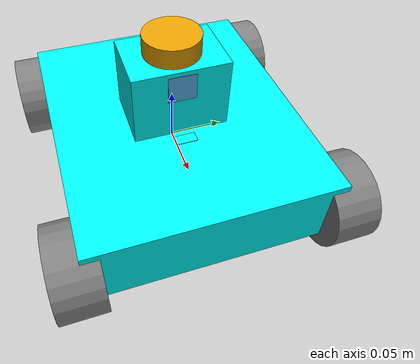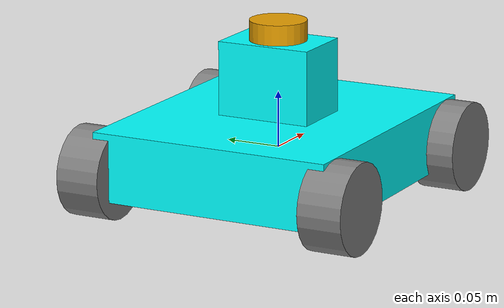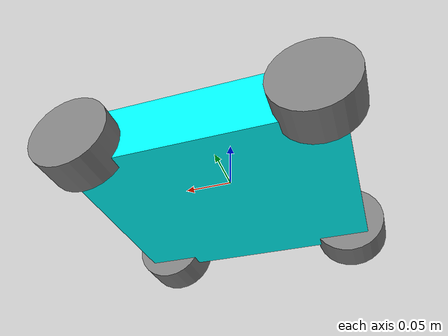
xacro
<?xml version="1.0" ?>
<!-- |    This document was autogenerated by xacro from land_description.urdf          | -->
<!-- |    EDITING THIS FILE BY HAND IS NOT RECOMMENDED                                 | -->
<robot name="land">
  <!-- position along x axis -->
  <!-- ROBOT BASE -->
  <link name="base_link">
    <visual>
      <geometry>
        <box size="0.262 0.221 0.061"/>
      </geometry>
      <material name="Cyan">
        <color rgba="0 1.0 1.0 1.0"/>
      </material>
    </visual>
    <collision>
      <geometry>
        <box size="0.262 0.221 0.061"/>
      </geometry>
    </collision>
  </link>
  <!-- ROBOT FOOTPRINT-->
  <link name="base_footprint">
    <inertial>
      <origin rpy="1.5707963267948966 0 1.5707963267948966" xyz="0 0 0"/>
      <mass value="2"/>
      <inertia ixx="0.012060833333333335" ixy="0.0" ixz="0.0" iyy="0.019580833333333332" iyz="0.0" izz="0.008760333333333334"/>
    </inertial>
  </link>
  <joint name="base_joint" type="fixed">
    <parent link="base_link"/>
    <child link="base_footprint"/>
    <origin rpy="0 0 0" xyz="0.0 0.0 -0.05"/>
  </joint>
  <!-- MAIN TOWER -->
  <link name="tower_link">
    <collision>
      <origin rpy="0 0 0" xyz="0 0 0"/>
      <geometry>
        <box size="0.06 0.086 0.066"/>
      </geometry>
    </collision>
    <inertial>
      <origin rpy="1.5707963267948966 0 1.5707963267948966" xyz="0 0 0"/>
      <mass value="0.5"/>
      <inertia ixx="0.00033150000000000003" ixy="0.0" ixz="0.0" iyy="0.0004581666666666666" iyz="0.0" izz="0.0004896666666666666"/>
    </inertial>
    <visual>
      <geometry>
        <box size="0.06 0.086 0.066"/>
      </geometry>
      <material name="Cyan">
        <color rgba="0 1.0 1.0 1.0"/>
      </material>
    </visual>
  </link>
  <joint name="tower_joint" type="fixed">
    <parent link="base_link"/>
    <child link="tower_link"/>
    <origin rpy="0 0 0" xyz="0.0 0.0 0.0635"/>
  </joint>
  <link name="back_left_link">
    <collision>
      <origin rpy="1.5707963267948966 0 0" xyz="0 0 0"/>
      <geometry>
        <cylinder length="0.04" radius="0.04"/>
      </geometry>
    </collision>
    <inertial>
      <origin rpy="1.5707963267948966 0 0" xyz="0 0 0"/>
      <mass value="0.5"/>
      <inertia ixx="0.0002666666666666666" ixy="0" ixz="0" iyy="0.0002666666666666666" iyz="0" izz="0.0004"/>
    </inertial>
    <visual>
      <origin rpy="1.5707963267948966 0 0" xyz="0 0 0"/>
      <geometry>
        <cylinder length="0.04" radius="0.04"/>
      </geometry>
      <material name="Gray">
        <color rgba="0.5 0.5 0.5 1.0"/>
      </material>
    </visual>
  </link>
  <joint name="back_left_wheel_joint" type="continuous">
    <parent link="base_link"/>
    <child link="back_left_link"/>
    <origin rpy="0 0 0" xyz="-0.111 0.1155 -0.01"/>
    <axis xyz="0 1 0"/>
  </joint>
  <link name="back_right_link">
    <collision>
      <origin rpy="1.5707963267948966 0 0" xyz="0 0 0"/>
      <geometry>
        <cylinder length="0.04" radius="0.04"/>
      </geometry>
    </collision>
    <inertial>
      <origin rpy="1.5707963267948966 0 0" xyz="0 0 0"/>
      <mass value="0.5"/>
      <inertia ixx="0.0002666666666666666" ixy="0" ixz="0" iyy="0.0002666666666666666" iyz="0" izz="0.0004"/>
    </inertial>
    <visual>
      <origin rpy="1.5707963267948966 0 0" xyz="0 0 0"/>
      <geometry>
        <cylinder length="0.04" radius="0.04"/>
      </geometry>
      <material name="Gray">
        <color rgba="0.5 0.5 0.5 1.0"/>
      </material>
    </visual>
  </link>
  <joint name="back_right_wheel_joint" type="continuous">
    <parent link="base_link"/>
    <child link="back_right_link"/>
    <origin rpy="0 0 0" xyz="-0.111 -0.1155 -0.01"/>
    <axis xyz="0 1 0"/>
  </joint>
  <link name="front_left_link">
    <collision>
      <origin rpy="1.5707963267948966 0 0" xyz="0 0 0"/>
      <geometry>
        <cylinder length="0.04" radius="0.04"/>
      </geometry>
    </collision>
    <inertial>
      <origin rpy="1.5707963267948966 0 0" xyz="0 0 0"/>
      <mass value="0.5"/>
      <inertia ixx="0.0002666666666666666" ixy="0" ixz="0" iyy="0.0002666666666666666" iyz="0" izz="0.0004"/>
    </inertial>
    <visual>
      <origin rpy="1.5707963267948966 0 0" xyz="0 0 0"/>
      <geometry>
        <cylinder length="0.04" radius="0.04"/>
      </geometry>
      <material name="Gray">
        <color rgba="0.5 0.5 0.5 1.0"/>
      </material>
    </visual>
  </link>
  <joint name="front_left_wheel_joint" type="continuous">
    <parent link="base_link"/>
    <child link="front_left_link"/>
    <origin rpy="0 0 0" xyz="0.111 0.1155 -0.01"/>
    <axis xyz="0 1 0"/>
  </joint>
  <link name="front_right_link">
    <collision>
      <origin rpy="1.5707963267948966 0 0" xyz="0 0 0"/>
      <geometry>
        <cylinder length="0.04" radius="0.04"/>
      </geometry>
    </collision>
    <inertial>
      <origin rpy="1.5707963267948966 0 0" xyz="0 0 0"/>
      <mass value="0.5"/>
      <inertia ixx="0.0002666666666666666" ixy="0" ixz="0" iyy="0.0002666666666666666" iyz="0" izz="0.0004"/>
    </inertial>
    <visual>
      <origin rpy="1.5707963267948966 0 0" xyz="0 0 0"/>
      <geometry>
        <cylinder length="0.04" radius="0.04"/>
      </geometry>
      <material name="Gray">
        <color rgba="0.5 0.5 0.5 1.0"/>
      </material>
    </visual>
  </link>
  <joint name="front_right_wheel_joint" type="continuous">
    <parent link="base_link"/>
    <child link="front_right_link"/>
    <origin rpy="0 0 0" xyz="0.111 -0.1155 -0.01"/>
    <axis xyz="0 1 0"/>
  </joint>
  <!-- IMU -->
  <link name="imu_link">
    <collision>
      <origin rpy="0 0 0" xyz="0 0 0"/>
      <geometry>
        <box size="0.01 0.02 0.001"/>
      </geometry>
    </collision>
    <inertial>
      <origin rpy="1.5707963267948966 0 1.5707963267948966" xyz="0 0 0"/>
      <mass value="0.01"/>
      <inertia ixx="3.341666666666667e-07" ixy="0.0" ixz="0.0" iyy="4.166666666666667e-07" iyz="0.0" izz="8.416666666666667e-08"/>
    </inertial>
    <visual>
      <origin rpy="0 0 0" xyz="0 0 0"/>
      <geometry>
        <box size="0.01 0.02 0.001"/>
      </geometry>
      <material name="Cyan">
        <color rgba="0.0 1.0 1.0 1.0"/>
      </material>
    </visual>
  </link>
  <joint name="imu_joint" type="fixed">
    <parent link="base_link"/>
    <child link="imu_link"/>
    <origin rpy="0 0 0" xyz="0.04 0 0.0305"/>
  </joint>
  <!-- LIDAR -->
  <link name="lidar_link">
    <visual name="lidar_link_visual">
      <geometry>
        <cylinder length="0.018" radius="0.0255"/>
      </geometry>
    </visual>
    <collision name="lidar_link_collision">
      <geometry>
        <cylinder length="0.018" radius="0.0255"/>
      </geometry>
    </collision>
    <inertial>
      <origin rpy="1.5707963267948966 0 0" xyz="0 0 0"/>
      <mass value="0.125"/>
      <inertia ixx="2.3695312499999997e-05" ixy="0" ixz="0" iyy="2.3695312499999997e-05" iyz="0" izz="4.0640624999999993e-05"/>
    </inertial>
  </link>
  <joint name="lidar_joint" type="fixed">
    <parent link="base_link"/>
    <child link="lidar_link"/>
    <origin rpy="0 0 3.14159" xyz="0 0 0.1055"/>
  </joint>
  <!-- CAMERA -->
  <link name="camera_link">
    <visual name="camera_link_visual">
      <geometry>
        <box size="0.001 0.025 0.025"/>
      </geometry>
    </visual>
    <collision name="camera_link_collision">
      <geometry>
        <box size="0.001 0.025 0.025"/>
      </geometry>
    </collision>
    <inertial>
      <origin rpy="1.5707963267948966 0 1.5707963267948966" xyz="0 0 0"/>
      <mass value="0.01"/>
      <inertia ixx="5.216666666666668e-07" ixy="0.0" ixz="0.0" iyy="5.216666666666668e-07" iyz="0.0" izz="1.041666666666667e-06"/>
    </inertial>
  </link>
  <joint name="camera_joint" type="fixed">
    <parent link="base_link"/>
    <child link="camera_link"/>
    <origin rpy="0 0 0" xyz="0.03 0 0.08"/>
  </joint>
  <!-- ROS2 WHEEL CONTROL -->
  <ros2_control name="MecanumHardware" type="system">
    <hardware>
      <plugin>land_description/MecanumSystemHardware</plugin>
    </hardware>
    <joint name="front_left_wheel_joint">
      <command_interface name="velocity"/>
      <state_interface name="velocity"/>
      <state_interface name="position"/>
    </joint>
    <joint name="front_right_wheel_joint">
      <command_interface name="velocity"/>
      <state_interface name="velocity"/>
      <state_interface name="position"/>
    </joint>
    <joint name="back_left_wheel_joint">
      <command_interface name="velocity"/>
      <state_interface name="velocity"/>
      <state_interface name="position"/>
    </joint>
    <joint name="back_right_wheel_joint">
      <command_interface name="velocity"/>
      <state_interface name="velocity"/>
      <state_interface name="position"/>
    </joint>
  </ros2_control>
</robot>
